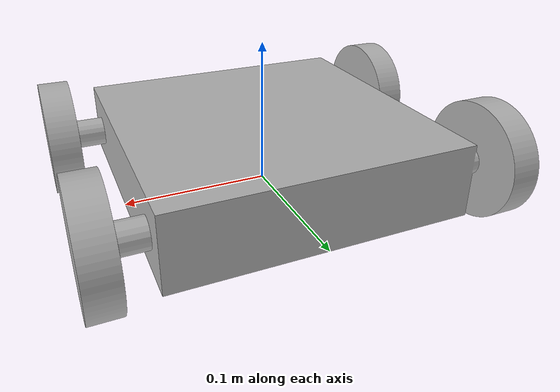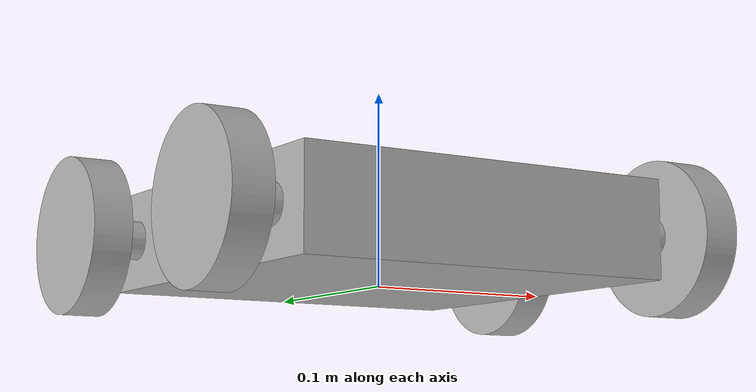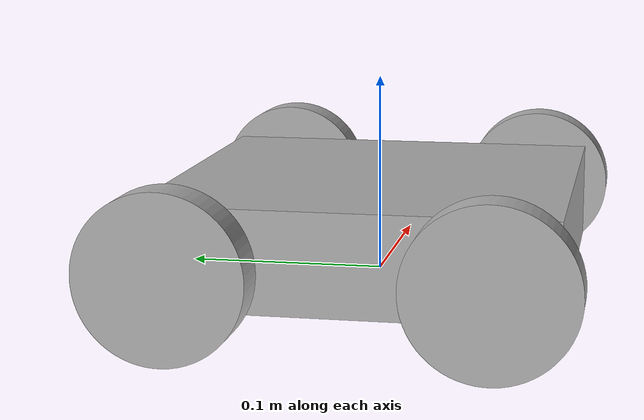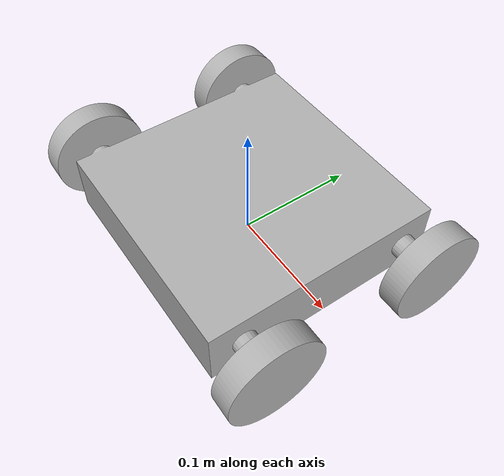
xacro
<?xml version="1.0" ?>
<robot name="car3" xmlns:xacro="http://www.ros.org/wiki/xacro">

<xacro:include filename="$(find car3_description)/urdf/materials.xacro" />
<xacro:include filename="$(find car3_description)/urdf/car3.trans" />
<xacro:include filename="$(find car3_description)/urdf/car3.gazebo" />
<link name="base_link">
  <inertial>
    <origin xyz="0.0 2.0716135773123243e-05 0.025000000000000005" rpy="0 0 0"/>
    <mass value="15.89729201864544"/>
    <inertia ixx="0.056679" iyy="0.058003" izz="0.10813" ixy="0.0" iyz="0.0" ixz="0.0"/>
  </inertial>
  <visual>
    <origin xyz="0 0 0" rpy="0 0 0"/>
    <geometry>
      <mesh filename="package://car3_description/meshes/base_link.stl" scale="0.001 0.001 0.001"/>
    </geometry>
    <material name="silver"/>
  </visual>
  <collision>
    <origin xyz="0 0 0" rpy="0 0 0"/>
    <geometry>
      <mesh filename="package://car3_description/meshes/base_link.stl" scale="0.001 0.001 0.001"/>
    </geometry>
  </collision>
</link>

<link name="rf_1">
  <inertial>
    <origin xyz="0.010000000000000037 8.484561392352319e-08 -6.938893903907228e-18" rpy="0 0 0"/>
    <mass value="0.054688844913691116"/>
    <inertia ixx="4.4e-05" iyy="2.4e-05" izz="2.4e-05" ixy="0.0" iyz="-0.0" ixz="0.0"/>
  </inertial>
  <visual>
    <origin xyz="-0.12 0.071778 -0.025" rpy="0 0 0"/>
    <geometry>
      <mesh filename="package://car3_description/meshes/rf_1.stl" scale="0.001 0.001 0.001"/>
    </geometry>
    <material name="silver"/>
  </visual>
  <collision>
    <origin xyz="-0.12 0.071778 -0.025" rpy="0 0 0"/>
    <geometry>
      <mesh filename="package://car3_description/meshes/rf_1.stl" scale="0.001 0.001 0.001"/>
    </geometry>
  </collision>
</link>

<link name="lb_1">
  <inertial>
    <origin xyz="-0.010000000000000037 4.2283598547521173e-07 -6.938893903907228e-18" rpy="0 0 0"/>
    <mass value="0.054688844913691116"/>
    <inertia ixx="4.4e-05" iyy="2.4e-05" izz="2.4e-05" ixy="-0.0" iyz="-0.0" ixz="-0.0"/>
  </inertial>
  <visual>
    <origin xyz="0.12 -0.075116 -0.025" rpy="0 0 0"/>
    <geometry>
      <mesh filename="package://car3_description/meshes/lb_1.stl" scale="0.001 0.001 0.001"/>
    </geometry>
    <material name="silver"/>
  </visual>
  <collision>
    <origin xyz="0.12 -0.075116 -0.025" rpy="0 0 0"/>
    <geometry>
      <mesh filename="package://car3_description/meshes/lb_1.stl" scale="0.001 0.001 0.001"/>
    </geometry>
  </collision>
</link>

<link name="lf_1">
  <inertial>
    <origin xyz="-0.010000000000000037 8.484561392352319e-08 -6.938893903907228e-18" rpy="0 0 0"/>
    <mass value="0.054688844913691116"/>
    <inertia ixx="4.4e-05" iyy="2.4e-05" izz="2.4e-05" ixy="0.0" iyz="-0.0" ixz="-0.0"/>
  </inertial>
  <visual>
    <origin xyz="0.12 0.071778 -0.025" rpy="0 0 0"/>
    <geometry>
      <mesh filename="package://car3_description/meshes/lf_1.stl" scale="0.001 0.001 0.001"/>
    </geometry>
    <material name="silver"/>
  </visual>
  <collision>
    <origin xyz="0.12 0.071778 -0.025" rpy="0 0 0"/>
    <geometry>
      <mesh filename="package://car3_description/meshes/lf_1.stl" scale="0.001 0.001 0.001"/>
    </geometry>
  </collision>
</link>

<link name="rb_1">
  <inertial>
    <origin xyz="0.010000000000000037 4.2283598547521173e-07 -6.938893903907228e-18" rpy="0 0 0"/>
    <mass value="0.054688844913691116"/>
    <inertia ixx="4.4e-05" iyy="2.4e-05" izz="2.4e-05" ixy="0.0" iyz="-0.0" ixz="0.0"/>
  </inertial>
  <visual>
    <origin xyz="-0.12 -0.075116 -0.025" rpy="0 0 0"/>
    <geometry>
      <mesh filename="package://car3_description/meshes/rb_1.stl" scale="0.001 0.001 0.001"/>
    </geometry>
    <material name="silver"/>
  </visual>
  <collision>
    <origin xyz="-0.12 -0.075116 -0.025" rpy="0 0 0"/>
    <geometry>
      <mesh filename="package://car3_description/meshes/rb_1.stl" scale="0.001 0.001 0.001"/>
    </geometry>
  </collision>
</link>

<joint name="Revolute 1" type="continuous">
  <origin xyz="0.12 -0.071778 0.025" rpy="0 0 0"/>
  <parent link="base_link"/>
  <child link="rf_1"/>
  <axis xyz="1.0 0.0 0.0"/>
</joint>

<joint name="Revolute 2" type="continuous">
  <origin xyz="-0.12 0.075116 0.025" rpy="0 0 0"/>
  <parent link="base_link"/>
  <child link="lb_1"/>
  <axis xyz="-1.0 0.0 0.0"/>
</joint>

<joint name="Revolute 3" type="continuous">
  <origin xyz="-0.12 -0.071778 0.025" rpy="0 0 0"/>
  <parent link="base_link"/>
  <child link="lf_1"/>
  <axis xyz="-1.0 0.0 0.0"/>
</joint>

<joint name="Revolute 4" type="continuous">
  <origin xyz="0.12 0.075116 0.025" rpy="0 0 0"/>
  <parent link="base_link"/>
  <child link="rb_1"/>
  <axis xyz="1.0 0.0 0.0"/>
</joint>

</robot>

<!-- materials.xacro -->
<robot name="new" xmlns:xacro="http://www.ros.org/wiki/xacro" >

<material name="silver">
  <color rgba="0.700 0.700 0.700 1.000"/>
</material>

</robot>

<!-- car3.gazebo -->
<robot name="car3" xmlns:xacro="http://www.ros.org/wiki/xacro" >

<xacro:property name="body_color" value="Gazebo/Silver" />

<gazebo>
  <plugin name="control" filename="libgazebo_ros_control.so"/>
</gazebo>
<gazebo reference="base_link">
  <material>${body_color}</material>
  <mu1>0.2</mu1>
  <mu2>0.2</mu2>
  <selfCollide>true</selfCollide>
  <gravity>true</gravity>
</gazebo>

<gazebo reference="rf_1">
  <material>${body_color}</material>
  <mu1>0.2</mu1>
  <mu2>0.2</mu2>
  <selfCollide>true</selfCollide>
</gazebo>

<gazebo reference="lb_1">
  <material>${body_color}</material>
  <mu1>0.2</mu1>
  <mu2>0.2</mu2>
  <selfCollide>true</selfCollide>
</gazebo>

<gazebo reference="lf_1">
  <material>${body_color}</material>
  <mu1>0.2</mu1>
  <mu2>0.2</mu2>
  <selfCollide>true</selfCollide>
</gazebo>

<gazebo reference="rb_1">
  <material>${body_color}</material>
  <mu1>0.2</mu1>
  <mu2>0.2</mu2>
  <selfCollide>true</selfCollide>
</gazebo>

</robot>
